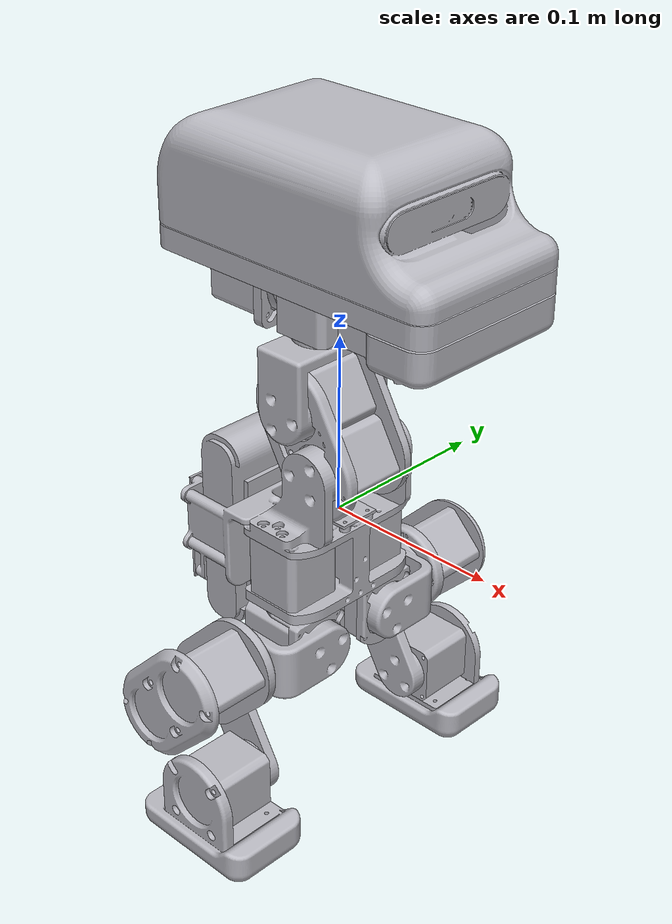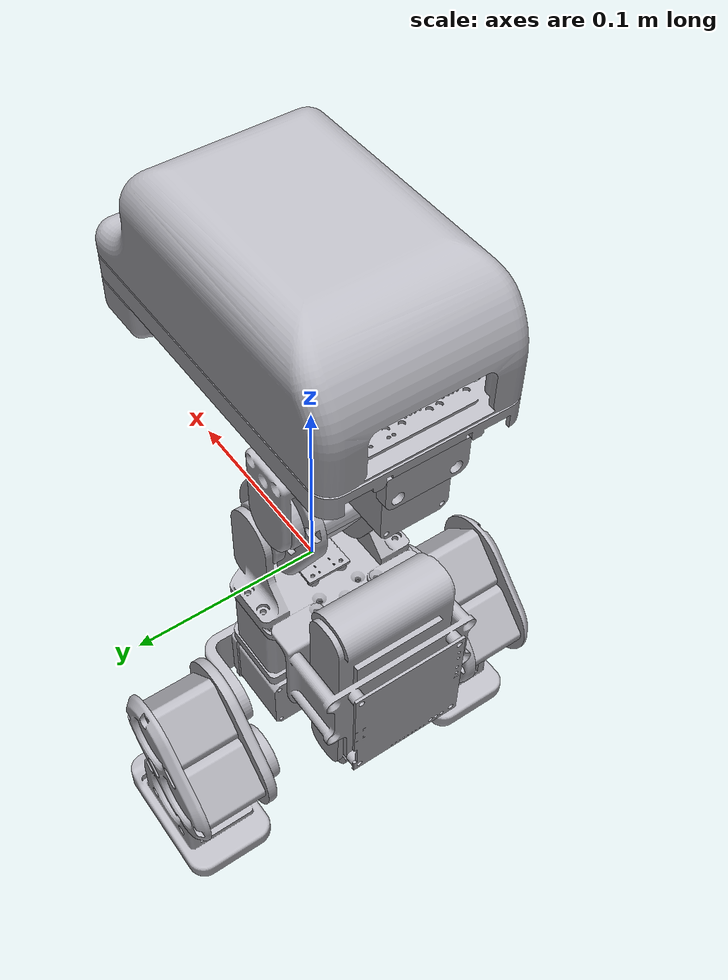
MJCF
<mujoco model="wmduck_walk">
  <compiler angle="radian" autolimits="true" meshdir=".." discardvisual="false" fusestatic="false" balanceinertia="false"/>
  <option timestep="0.005" integrator="implicitfast" solver="Newton" iterations="30" ls_iterations="50" tolerance="1e-8" cone="pyramidal" impratio="1.0"/>
  <default>
    <geom friction="0.9 0.02 0.001" condim="3" solref="0.02 1" solimp="0.9 0.95 0.001"/>
    <default class="visual">
      <geom group="2" contype="0" conaffinity="0" rgba="0.72 0.72 0.75 1" condim="3" solref="0.02 1" solimp="0.9 0.95 0.001"/>
    </default>
    <default class="collision">
      <geom group="3" condim="3" friction="0.9 0.02 0.001" solref="0.02 1" solimp="0.9 0.95 0.001"/>
    </default>
    <default class="foot">
      <geom group="3" condim="3" priority="1" friction="1.0 0.02 0.001" solref="0.02 1" solimp="0.9 0.95 0.001"/>
    </default>
  </default>
  <asset>
    <mesh name="Battery_6s18650_24V" file="meshes/Battery_6s18650_24V.stl"/>
    <mesh name="Bearing_20_27_4" file="meshes/Bearing_20_27_4.stl"/>
    <mesh name="Body_Frame" file="meshes/Body_Frame.stl"/>
    <mesh name="Control_Borad_AT32" file="meshes/Control_Borad_AT32.stl"/>
    <mesh name="Head" file="meshes/Head.stl"/>
    <mesh name="Head_pitch" file="meshes/Head_pitch.stl"/>
    <mesh name="IMU_YB-MRA02" file="meshes/IMU_YB-MRA02.stl"/>
    <mesh name="Left_feet" file="meshes/Left_feet.stl"/>
    <mesh name="Left_hip_roll" file="meshes/Left_hip_roll.stl"/>
    <mesh name="Left_knee" file="meshes/Left_knee.stl"/>
    <mesh name="Motor_HTDW3532" file="meshes/Motor_HTDW3532.stl"/>
    <mesh name="Mouth" file="meshes/Mouth.stl"/>
    <mesh name="Right_feet" file="meshes/Right_feet.stl"/>
    <mesh name="Right_hip_roll" file="meshes/Right_hip_roll.stl"/>
    <mesh name="Right_knee" file="meshes/Right_knee.stl"/>
    <mesh name="WMD1005" file="meshes/WMD1005.stl"/>
    <mesh name="WMD1007" file="meshes/WMD1007.stl"/>
    <mesh name="WMD1008" file="meshes/WMD1008.stl"/>
    <mesh name="WMD1012" file="meshes/WMD1012.stl"/>
    <mesh name="WMD1018" file="meshes/WMD1018.stl"/>
  </asset>
  <worldbody>
    <body name="base_link" pos="0 0 0" quat="1 0 0 0">
      <freejoint name="floating_base"/>
      <site name="imu" pos="0 0 0" size="0.004" group="4"/>
      <inertial pos="-0.030796191 -0.000125121 -0.024961104" mass="0.65064023518"
                fullinertia="0.000767013657234 0.000877740696996 0.000874928102505 2.51539808736e-06 -6.3368463925e-05 3.21785201764e-06"/>
      <geom name="base_link_visual0" class="visual" type="mesh" mesh="Motor_HTDW3532" pos="-0.008898501 -0.026 -0.00860148" quat="0 0 -1 0"/>
      <geom name="base_link_visual1" class="visual" type="mesh" mesh="Body_Frame" pos="-0.008898501 0 -0.04360148" quat="1 0 0 0"/>
      <geom name="base_link_visual2" class="visual" type="mesh" mesh="IMU_YB-MRA02" pos="-0.0977215 -0.095590998 -0.00160148" quat="0 0.707106781 0.707106781 0"/>
      <geom name="base_link_visual3" class="visual" type="mesh" mesh="Control_Borad_AT32" pos="-0.083408501 -0.1 0.08679852" quat="0.5 0.5 0.5 0.5"/>
      <geom name="base_link_visual4" class="visual" type="mesh" mesh="Motor_HTDW3532" pos="-0.008898501 0.026 -0.00860148" quat="0 -0.707106781 0.707106781 0"/>
      <geom name="base_link_visual5" class="visual" type="mesh" mesh="Battery_6s18650_24V" pos="-0.058898501 0 -0.02710148" quat="0.5 0.5 -0.5 0.5"/>
      <geom name="base_link_body_collision" class="collision" type="box" size="0.071956 0.043515 0.055623" pos="-0.034034 0.000227 -0.018102" quat="0.045668589 -0.385638693 0.010896581 0.921454526" contype="8" conaffinity="1"/>
      <body name="left_hip_yaw_link" pos="-0.008898501 0.026 -0.04470398" quat="1 0 0 0">
        <joint name="left_hip_yaw" type="hinge" axis="0 0 1" range="-1.72787596 0.532325422" limited="true" armature="0.001" damping="0.05" frictionloss="0.02"/>
        <inertial pos="-0.001324559 -0.000000009 -0.025736392" mass="0.151466330426"
                  fullinertia="3.28308619931e-05 3.43027633729e-05 3.10679302198e-05 0 -4.95248655672e-07 1.90120876212e-11"/>
        <geom name="left_hip_yaw_link_visual0" class="visual" type="mesh" mesh="Motor_HTDW3532" pos="-0.0195 0 -0.0269" quat="0.5 0.5 0.5 0.5"/>
        <geom name="left_hip_yaw_link_visual1" class="visual" type="mesh" mesh="WMD1005" pos="0 0 -0.0094" quat="0.707106781 0 0 -0.707106781"/>
        <body name="left_hip_roll_link" pos="0.0166025 0 -0.0269" quat="1 0 0 0">
          <joint name="left_hip_roll" type="hinge" axis="1 0 0" range="-1.11526539 0.431096325" limited="true" armature="0.001" damping="0.05" frictionloss="0.02"/>
          <inertial pos="-0.002644589 0.019538455 0" mass="0.0245500285629"
                    fullinertia="8.84110090163e-06 5.53593458725e-06 1.10010680111e-05 3.54264387788e-06 0 0"/>
          <geom name="left_hip_roll_link_visual0" class="visual" type="mesh" mesh="Left_hip_roll" pos="-0.0166 -0.026 0.028" quat="1 0 0 0"/>
          <body name="left_hip_pitch_link" pos="-0.0166 0.0416 0" quat="1 0 0 0">
            <joint name="left_hip_pitch" type="hinge" axis="0 1 0" range="-1.13097336 2.80474411" limited="true" armature="0.001" damping="0.05" frictionloss="0.02"/>
            <inertial pos="-0.012374369 0.018739826 -0.012374369" mass="0.309377727974"
                      fullinertia="0.000121934928728 0.000163208922433 0.000121934928614 0 -4.74616079245e-05 0"/>
            <geom name="left_hip_pitch_link_visual0" class="visual" type="mesh" mesh="WMD1007" pos="-0.012374369 0.0011025 -0.012374369" quat="0.27059805 0.27059805 0.653281482 -0.653281482"/>
            <geom name="left_hip_pitch_link_visual1" class="visual" type="mesh" mesh="Motor_HTDW3532" pos="0 0.0361025 0" quat="0.27059805 0.27059805 0.653281482 -0.653281482"/>
            <geom name="left_hip_pitch_link_visual2" class="visual" type="mesh" mesh="Motor_HTDW3532" pos="-0.024748737 0.0361025 -0.024748737" quat="0.27059805 0.27059805 0.653281482 -0.653281482"/>
            <geom name="left_hip_pitch_link_visual3" class="visual" type="mesh" mesh="WMD1008" pos="-0.012374369 0.0421025 -0.012374369" quat="0.27059805 0.27059805 0.653281482 -0.653281482"/>
            <body name="left_knee_link" pos="-0.024748737 0 -0.024748737" quat="1 0 0 0">
              <joint name="left_knee" type="hinge" axis="0 1 0" range="-0.574213324 3.10668607" limited="true" armature="0.001" damping="0.05" frictionloss="0.02"/>
              <inertial pos="0.011312099 -0.007692735 -0.01959313" mass="0.0210816115943"
                        fullinertia="9.82413649977e-06 1.37899798002e-05 4.41801873665e-06 2.59845188064e-07 4.68183531871e-06 -4.50065067829e-07"/>
              <geom name="left_knee_link_visual0" class="visual" type="mesh" mesh="Left_knee" pos="0.024748737 -0.0676 0.052748737" quat="1 0 0 0"/>
              <geom name="left_knee_link_hull0_collision" class="collision" type="mesh" mesh="Left_knee" pos="0.024748737 -0.0676 0.052748737" quat="1 0 0 0" contype="4" conaffinity="1"/>
              <body name="left_ankle_link" pos="0.027 -0.0046 -0.046765372" quat="1 0 0 0">
                <joint name="left_ankle" type="hinge" axis="0 1 0" range="-1.76452787 0.984365698" limited="true" armature="0.001" damping="0.05" frictionloss="0.02"/>
                <inertial pos="0.000630945 0.020230954 -0.007801596" mass="0.216671675043"
                          fullinertia="7.8899551614e-05 9.92879155467e-05 8.38229441463e-05 -1.8751289219e-07 1.19644203131e-06 2.01735939486e-06"/>
                <geom name="left_ankle_link_visual0" class="visual" type="mesh" mesh="Left_feet" pos="-0.002251263 -0.0629975 0.099514109" quat="1 0 0 0"/>
                <geom name="left_ankle_link_visual1" class="visual" type="mesh" mesh="Motor_HTDW3532" pos="0 0.0361025 0" quat="0 0 -0.707106781 0.707106781"/>
                <site name="foot_left" pos="0.000226 0.021672 -0.0345" size="0.006" group="4"/>
                <geom name="left_ankle_link_sole_collision" class="foot" type="box" size="0.040218 0.025554 0.005695" pos="0.000001 0.021606 -0.028843" quat="0.000774559 0.99999895 0.001214731 0.000156587" contype="2" conaffinity="3"/>
              </body>
            </body>
          </body>
        </body>
      </body>
      <body name="right_hip_yaw_link" pos="-0.008898501 -0.026 -0.04470398" quat="1 0 0 0">
        <joint name="right_hip_yaw" type="hinge" axis="0 0 1" range="-0.532325422 1.72787596" limited="true" armature="0.001" damping="0.05" frictionloss="0.02"/>
        <inertial pos="-0.001324559 -0.000000009 -0.025736392" mass="0.151466330426"
                  fullinertia="3.28308619931e-05 3.43027633729e-05 3.10679302198e-05 0 -4.95248655672e-07 1.90120876212e-11"/>
        <geom name="right_hip_yaw_link_visual0" class="visual" type="mesh" mesh="Motor_HTDW3532" pos="-0.0195 0 -0.0269" quat="0.5 0.5 0.5 0.5"/>
        <geom name="right_hip_yaw_link_visual1" class="visual" type="mesh" mesh="WMD1005" pos="0 0 -0.0094" quat="0.707106781 0 0 -0.707106781"/>
        <body name="right_hip_roll_link" pos="0.0166025 0 -0.0269" quat="1 0 0 0">
          <joint name="right_hip_roll" type="hinge" axis="1 0 0" range="-0.431096325 1.11526539" limited="true" armature="0.001" damping="0.05" frictionloss="0.02"/>
          <inertial pos="-0.002644589 -0.019538455 0" mass="0.024550028563"
                    fullinertia="8.84110090145e-06 5.53593458742e-06 1.10010680107e-05 -3.54264387783e-06 0 0"/>
          <geom name="right_hip_roll_link_visual0" class="visual" type="mesh" mesh="Right_hip_roll" pos="-0.0166 0.026 0.028" quat="1 0 0 0"/>
          <body name="right_hip_pitch_link" pos="-0.0166 -0.0416 0" quat="1 0 0 0">
            <joint name="right_hip_pitch" type="hinge" axis="0 1 0" range="-1.13097336 2.80474411" limited="true" armature="0.001" damping="0.05" frictionloss="0.02"/>
            <inertial pos="-0.012374369 -0.018739826 -0.012374369" mass="0.309377727974"
                      fullinertia="0.000121934928614 0.000163208922433 0.000121934928728 0 -4.74616079245e-05 0"/>
            <geom name="right_hip_pitch_link_visual0" class="visual" type="mesh" mesh="Motor_HTDW3532" pos="0 -0.0361025 0" quat="0.27059805 -0.27059805 0.653281482 0.653281482"/>
            <geom name="right_hip_pitch_link_visual1" class="visual" type="mesh" mesh="Motor_HTDW3532" pos="-0.024748737 -0.0361025 -0.024748737" quat="0.27059805 -0.27059805 0.653281482 0.653281482"/>
            <geom name="right_hip_pitch_link_visual2" class="visual" type="mesh" mesh="WMD1008" pos="-0.012374369 -0.0421025 -0.012374369" quat="0.27059805 -0.27059805 0.653281482 0.653281482"/>
            <geom name="right_hip_pitch_link_visual3" class="visual" type="mesh" mesh="WMD1007" pos="-0.012374369 -0.0011025 -0.012374369" quat="0.27059805 -0.27059805 0.653281482 0.653281482"/>
            <body name="right_knee_link" pos="-0.024748737 0 -0.024748737" quat="1 0 0 0">
              <joint name="right_knee" type="hinge" axis="0 1 0" range="-0.574213324 3.10668607" limited="true" armature="0.001" damping="0.05" frictionloss="0.02"/>
              <inertial pos="0.011312099 0.007692735 -0.01959313" mass="0.0210816115943"
                        fullinertia="9.82413649977e-06 1.37899798002e-05 4.41801873665e-06 -2.59845188064e-07 4.68183531871e-06 4.50065067829e-07"/>
              <geom name="right_knee_link_visual0" class="visual" type="mesh" mesh="Right_knee" pos="0.024748737 0.0676 0.052748737" quat="1 0 0 0"/>
              <geom name="right_knee_link_hull0_collision" class="collision" type="mesh" mesh="Right_knee" pos="0.024748737 0.0676 0.052748737" quat="1 0 0 0" contype="4" conaffinity="1"/>
              <body name="right_ankle_link" pos="0.027 0.0046 -0.046765372" quat="1 0 0 0">
                <joint name="right_ankle" type="hinge" axis="0 1 0" range="-1.76452787 0.984365698" limited="true" armature="0.001" damping="0.05" frictionloss="0.02"/>
                <inertial pos="0.000630946 -0.020230954 -0.007801596" mass="0.216671675042"
                          fullinertia="7.88995517978e-05 9.92879155373e-05 8.38229443291e-05 1.8748975681e-07 1.19644202034e-06 -2.0173589818e-06"/>
                <geom name="right_ankle_link_visual0" class="visual" type="mesh" mesh="Right_feet" pos="-0.002251263 0.0629975 0.099514109" quat="1 0 0 0"/>
                <geom name="right_ankle_link_visual1" class="visual" type="mesh" mesh="Motor_HTDW3532" pos="0 -0.0361025 0" quat="0.707106781 -0.707106781 0 0"/>
                <site name="foot_right" pos="0.000247 -0.021797 -0.0345" size="0.006" group="4"/>
                <geom name="right_ankle_link_sole_collision" class="foot" type="box" size="0.040254 0.025623 0.005629" pos="0.000001 -0.021611 -0.028953" quat="0.001789927 -0.999995561 -0.002364908 -0.000284928" contype="2" conaffinity="3"/>
              </body>
            </body>
          </body>
        </body>
      </body>
      <body name="neck_pitch_link" pos="0.004601499 -0.0186 0.03039852" quat="1 0 0 0">
        <joint name="neck_pitch" type="hinge" axis="0 1 0" range="-0.612610567 2.24274809" limited="true" armature="0.001" damping="0.05" frictionloss="0.02"/>
        <inertial pos="-0.00875 0.020096046 0.015155445" mass="0.327409232363"
                  fullinertia="0.000162127476652 0.000172769587728 0.000111875414123 0 4.35195628883e-05 0"/>
        <geom name="neck_pitch_link_visual0" class="visual" type="mesh" mesh="Motor_HTDW3532" pos="0 0.0361025 0" quat="0.353553391 0.353553391 -0.612372436 0.612372436"/>
        <geom name="neck_pitch_link_visual1" class="visual" type="mesh" mesh="WMD1012" pos="-0.00875 0.0421025 0.015155445" quat="0.353553391 0.353553391 -0.612372436 0.612372436"/>
        <geom name="neck_pitch_link_visual2" class="visual" type="mesh" mesh="WMD1007" pos="-0.00875 0.0011025 0.015155445" quat="0.353553391 0.353553391 -0.612372436 0.612372436"/>
        <geom name="neck_pitch_link_visual3" class="visual" type="mesh" mesh="Bearing_20_27_4" pos="0 0.0421025 0" quat="0.353553391 0.353553391 -0.612372436 0.612372436"/>
        <geom name="neck_pitch_link_visual4" class="visual" type="mesh" mesh="Bearing_20_27_4" pos="-0.0175 0.0421025 0.030310889" quat="0.353553391 0.353553391 -0.612372436 0.612372436"/>
        <geom name="neck_pitch_link_visual5" class="visual" type="mesh" mesh="Motor_HTDW3532" pos="-0.0175 0.0361025 0.030310889" quat="0.353553391 0.353553391 -0.612372436 0.612372436"/>
        <body name="head_pitch_link" pos="-0.0175 0 0.030310889" quat="1 0 0 0">
          <joint name="head_pitch" type="hinge" axis="0 1 0" range="-1.1274827 1.20776784" limited="true" armature="0.001" damping="0.05" frictionloss="0.02"/>
          <inertial pos="-0.00000001 0.018171957 0.016285628" mass="0.0367853906427"
                    fullinertia="3.07595022737e-05 1.21863307027e-05 2.35904943228e-05 5.87603258478e-12 3.88195369953e-12 -1.20514652959e-06"/>
          <geom name="head_pitch_link_visual0" class="visual" type="mesh" mesh="Head_pitch" pos="0 -0.0126 0" quat="0.5 -0.5 -0.5 -0.5"/>
          <body name="head_yaw_link" pos="0 0.0186 0.0374" quat="1 0 0 0">
            <joint name="head_yaw" type="hinge" axis="0 0 1" range="-3.10668607 3.10668607" limited="true" armature="0.001" damping="0.05" frictionloss="0.02"/>
            <inertial pos="-0.001163608 -0.000000009 0.018953001" mass="0.151466330426"
                      fullinertia="3.11184244633e-05 3.43532576164e-05 3.28308619931e-05 -1.90120857195e-11 5.52518523071e-07 0"/>
            <geom name="head_yaw_link_visual0" class="visual" type="mesh" mesh="WMD1005" pos="-0.0175 0 0.0206025" quat="0.5 0.5 -0.5 -0.5"/>
            <geom name="head_yaw_link_visual1" class="visual" type="mesh" mesh="Motor_HTDW3532" pos="0 0 0.0361025" quat="0 0.707106781 0.707106781 0"/>
            <body name="head_roll_link" pos="-0.0269 0 0.0206025" quat="1 0 0 0">
              <joint name="head_roll" type="hinge" axis="1 0 0" range="-1.25489173 1.32121424" limited="true" armature="0.001" damping="0.05" frictionloss="0.02"/>
              <inertial pos="0.04279802 0.000121919 0.036779174" mass="1.08084048193"
                        fullinertia="0.00173221370203 0.00371596269826 0.00361313236566 -3.71265253089e-06 -0.000184632323815 5.94982293849e-06"/>
              <geom name="head_roll_link_visual0" class="visual" type="mesh" mesh="WMD1018" pos="-0.0011025 0 0" quat="0.5 0.5 0.5 0.5"/>
              <geom name="head_roll_link_visual1" class="visual" type="mesh" mesh="Head" pos="0.0478975 0 0.0285" quat="0.707106781 0 0 -0.707106781"/>
              <geom name="head_roll_link_visual2" class="visual" type="mesh" mesh="Motor_HTDW3532" pos="0.0728975 -0.0175 0.005" quat="0 0 0.707106781 0.707106781"/>
              <geom name="head_roll_link_visual3" class="visual" type="mesh" mesh="Motor_HTDW3532" pos="-0.0361025 0 0" quat="0.5 0.5 0.5 0.5"/>
              <body name="mouth_link" pos="0.0728975 0.0186025 0.005" quat="1 0 0 0">
                <inertial pos="0.034791202 -0.012999476 -0.000272678" mass="0.0579033656106"
                          fullinertia="4.17786063742e-05 2.40447888247e-05 6.01787812277e-05 9.44766438093e-06 -4.3977492908e-07 -8.21600560492e-08"/>
                <geom name="mouth_link_visual0" class="visual" type="mesh" mesh="Mouth" pos="-0.042 -0.0186 -0.167310889" quat="1 0 0 0"/>
              </body>
            </body>
          </body>
        </body>
      </body>
      <body name="imu_link" pos="0 0 0" quat="1 0 0 0">
      </body>
    </body>
  </worldbody>
  <actuator>
    <position name="act_left_hip_yaw" joint="left_hip_yaw" kp="5.0" kv="0.5" forcerange="-1.5 1.5" ctrlrange="-1.72787596 0.532325422"/>
    <position name="act_right_hip_yaw" joint="right_hip_yaw" kp="5.0" kv="0.5" forcerange="-1.5 1.5" ctrlrange="-0.532325422 1.72787596"/>
    <position name="act_left_hip_roll" joint="left_hip_roll" kp="5.0" kv="0.5" forcerange="-1.5 1.5" ctrlrange="-1.11526539 0.431096325"/>
    <position name="act_right_hip_roll" joint="right_hip_roll" kp="5.0" kv="0.5" forcerange="-1.5 1.5" ctrlrange="-0.431096325 1.11526539"/>
    <position name="act_left_hip_pitch" joint="left_hip_pitch" kp="5.0" kv="0.5" forcerange="-1.5 1.5" ctrlrange="-1.13097336 2.80474411"/>
    <position name="act_right_hip_pitch" joint="right_hip_pitch" kp="5.0" kv="0.5" forcerange="-1.5 1.5" ctrlrange="-1.13097336 2.80474411"/>
    <position name="act_left_knee" joint="left_knee" kp="5.0" kv="0.5" forcerange="-1.5 1.5" ctrlrange="-0.574213324 3.10668607"/>
    <position name="act_right_knee" joint="right_knee" kp="5.0" kv="0.5" forcerange="-1.5 1.5" ctrlrange="-0.574213324 3.10668607"/>
    <position name="act_left_ankle" joint="left_ankle" kp="5.0" kv="0.5" forcerange="-1.5 1.5" ctrlrange="-1.76452787 0.984365698"/>
    <position name="act_right_ankle" joint="right_ankle" kp="5.0" kv="0.5" forcerange="-1.5 1.5" ctrlrange="-1.76452787 0.984365698"/>
    <position name="act_neck_pitch" joint="neck_pitch" kp="5.0" kv="0.5" forcerange="-1.5 1.5" ctrlrange="-0.612610567 2.24274809"/>
    <position name="act_head_pitch" joint="head_pitch" kp="5.0" kv="0.5" forcerange="-1.5 1.5" ctrlrange="-1.1274827 1.20776784"/>
    <position name="act_head_yaw" joint="head_yaw" kp="5.0" kv="0.5" forcerange="-1.5 1.5" ctrlrange="-3.10668607 3.10668607"/>
    <position name="act_head_roll" joint="head_roll" kp="5.0" kv="0.5" forcerange="-1.5 1.5" ctrlrange="-1.25489173 1.32121424"/>
  </actuator>
  <sensor>
    <framequat name="imu_quat" objtype="site" objname="imu"/>
    <gyro name="imu_gyro" site="imu"/>
    <accelerometer name="imu_acc" site="imu"/>
    <velocimeter name="imu_lin_vel" site="imu"/>
    <jointpos name="pos_left_hip_yaw" joint="left_hip_yaw"/>
    <jointvel name="vel_left_hip_yaw" joint="left_hip_yaw"/>
    <jointpos name="pos_right_hip_yaw" joint="right_hip_yaw"/>
    <jointvel name="vel_right_hip_yaw" joint="right_hip_yaw"/>
    <jointpos name="pos_left_hip_roll" joint="left_hip_roll"/>
    <jointvel name="vel_left_hip_roll" joint="left_hip_roll"/>
    <jointpos name="pos_right_hip_roll" joint="right_hip_roll"/>
    <jointvel name="vel_right_hip_roll" joint="right_hip_roll"/>
    <jointpos name="pos_left_hip_pitch" joint="left_hip_pitch"/>
    <jointvel name="vel_left_hip_pitch" joint="left_hip_pitch"/>
    <jointpos name="pos_right_hip_pitch" joint="right_hip_pitch"/>
    <jointvel name="vel_right_hip_pitch" joint="right_hip_pitch"/>
    <jointpos name="pos_left_knee" joint="left_knee"/>
    <jointvel name="vel_left_knee" joint="left_knee"/>
    <jointpos name="pos_right_knee" joint="right_knee"/>
    <jointvel name="vel_right_knee" joint="right_knee"/>
    <jointpos name="pos_left_ankle" joint="left_ankle"/>
    <jointvel name="vel_left_ankle" joint="left_ankle"/>
    <jointpos name="pos_right_ankle" joint="right_ankle"/>
    <jointvel name="vel_right_ankle" joint="right_ankle"/>
    <jointpos name="pos_neck_pitch" joint="neck_pitch"/>
    <jointvel name="vel_neck_pitch" joint="neck_pitch"/>
    <jointpos name="pos_head_pitch" joint="head_pitch"/>
    <jointvel name="vel_head_pitch" joint="head_pitch"/>
    <jointpos name="pos_head_yaw" joint="head_yaw"/>
    <jointvel name="vel_head_yaw" joint="head_yaw"/>
    <jointpos name="pos_head_roll" joint="head_roll"/>
    <jointvel name="vel_head_roll" joint="head_roll"/>
    <touch name="touch_foot_left" site="foot_left"/>
    <touch name="touch_foot_right" site="foot_right"/>
  </sensor>
  <keyframe>
    <key name="stand" qpos="0 0 0.177618 1 0 0 0 0 0 0 0 0 0 0 0 0 0 0 0 0 0"/>
  </keyframe>
</mujoco>
